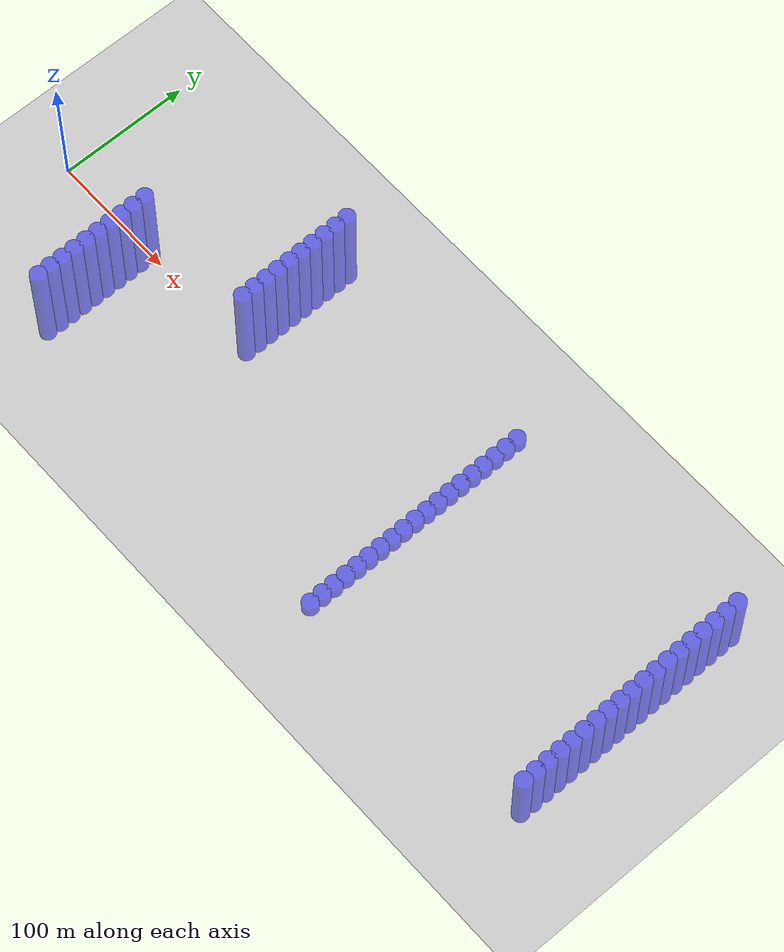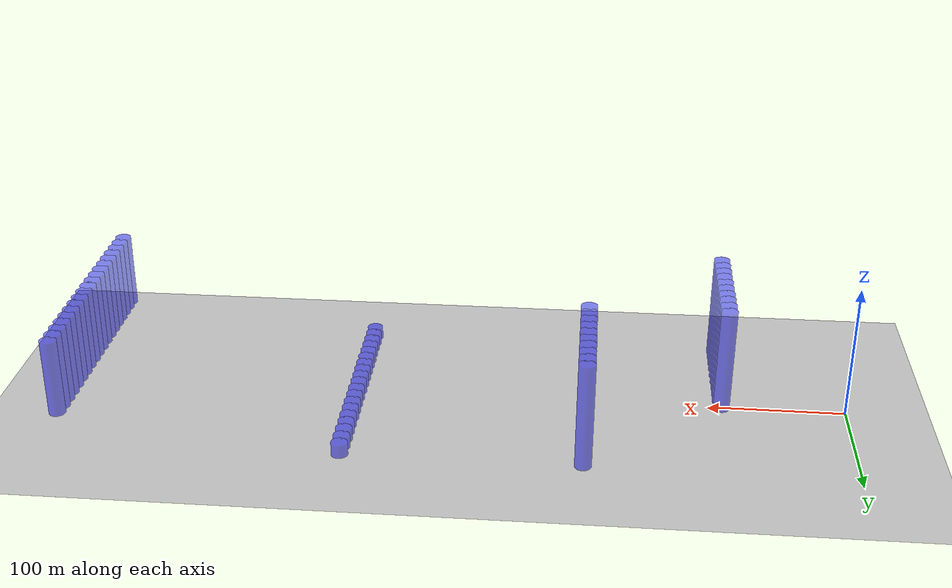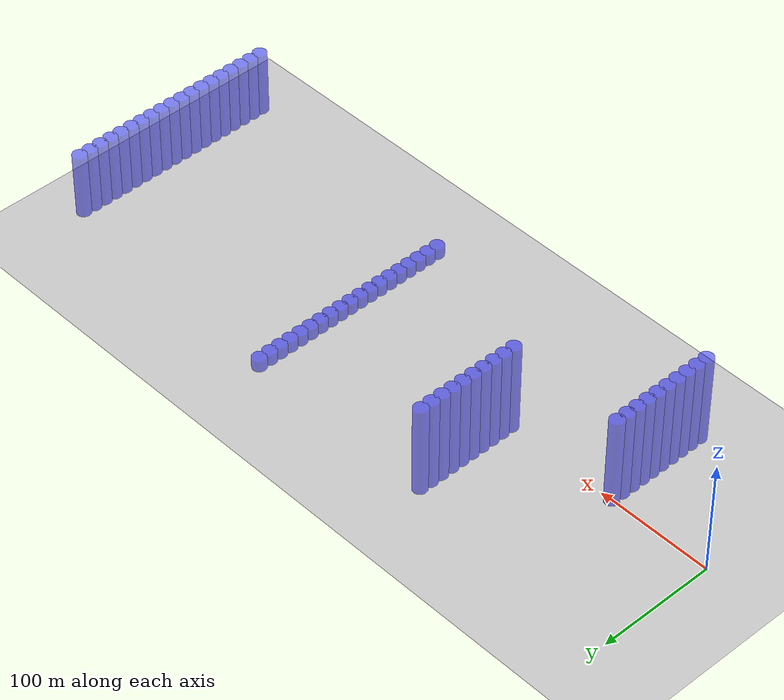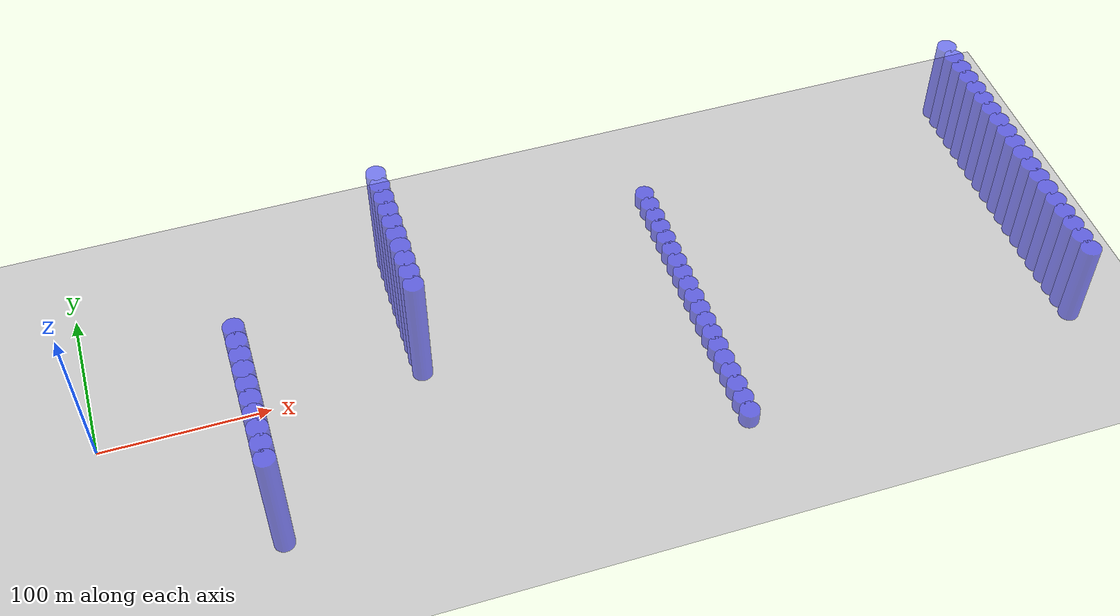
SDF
<?xml version='1.0' encoding='utf-8'?>
<sdf version="1.6">
  <world name="default">
    <physics name="default_physics" default="0" type="ode">
      <ode>
        <solver>
          <type>quick</type>
          <iters>50</iters>
          <sor>0.8</sor>
          <use_dynamic_moi_rescaling>0</use_dynamic_moi_rescaling>
        </solver>
        <constraints>
          <cfm>0</cfm>
          <erp>0.2</erp>
          <contact_max_correcting_vel>0.1</contact_max_correcting_vel>
          <contact_surface_layer>0</contact_surface_layer>
        </constraints>
      </ode>
      <real_time_update_rate>100</real_time_update_rate>
      <max_step_size>0.01</max_step_size>
      <real_time_factor>1</real_time_factor>
    </physics>
    <light name="sun" type="directional">
      <cast_shadows>1</cast_shadows>
      <pose frame="">0 0 10 0 -0 0</pose>
      <diffuse>0.8 0.8 0.8 1</diffuse>
      <specular>0.2 0.2 0.2 1</specular>
      <attenuation>
        <range>1000</range>
        <constant>0.9</constant>
        <linear>0.01</linear>
        <quadratic>0.001</quadratic>
      </attenuation>
      <direction>-0.5 0.1 -0.9</direction>
    </light>
    <model name="ground_plane">
      <static>1</static>
      <link name="link">
        <collision name="collision">
          <geometry>
            <plane>
              <normal>0 0 1</normal>
              <size>2200.0 600.0</size>
            </plane>
          </geometry>
          <surface>
            <friction>
              <ode>
                <mu>100</mu>
                <mu2>50</mu2>
              </ode>
              <torsional>
                <ode />
              </torsional>
            </friction>
            <contact>
              <ode />
            </contact>
            <bounce />
          </surface>
          <max_contacts>10</max_contacts>
        </collision>
        <visual name="visual">
          <cast_shadows>0</cast_shadows>
          <geometry>
            <plane>
              <normal>0 0 1</normal>
              <size>2200.0 600.0</size>
            </plane>
          </geometry>
          <material>
            <script>
              <uri>file://media/materials/scripts/gazebo.material</uri>
              <name>Gazebo/Grey</name>
            </script>
          </material>
        </visual>
        <self_collide>0</self_collide>
        <enable_wind>0</enable_wind>
        <kinematic>0</kinematic>
      </link>
    </model>
    <gravity>0 0 0</gravity>
    <magnetic_field>6e-06 2.3e-05 -4.2e-05</magnetic_field>
    <atmosphere type="adiabatic" />
    <scene>
      <ambient>0.4 0.4 0.4 1</ambient>
      <background>0.7 0.7 0.7 1</background>
      <shadows>1</shadows>
    </scene>
    <wind />
    <spherical_coordinates>
      <surface_model>EARTH_WGS84</surface_model>
      <latitude_deg>0</latitude_deg>
      <longitude_deg>0</longitude_deg>
      <elevation>0</elevation>
      <heading_deg>0</heading_deg>
    </spherical_coordinates>
    <model name="suav1">
      <link name="base_link">
        <pose frame="">0 0 0 0 -0 0</pose>
        <inertial>
          <pose frame="">0 0 0 0 -0 0</pose>
          <mass>0.1</mass>
          <inertia>
            <ixx>1</ixx>
            <ixy>0</ixy>
            <ixz>0</ixz>
            <iyy>1</iyy>
            <iyz>0</iyz>
            <izz>1</izz>
          </inertia>
        </inertial>
        <collision name="base_link_fixed_joint_lump__body_link_collision">
          <pose frame="">0 0 0 0 -0 0</pose>
          <geometry>
            <mesh>
              <scale>0.1 0.1 0.1</scale>
              <uri>package://simple_airplane_description/meshes/simple_airplane.dae</uri>
            </mesh>
          </geometry>
          <surface>
            <contact>
              <ode />
            </contact>
            <friction>
              <ode />
              <torsional>
                <ode />
              </torsional>
            </friction>
            <bounce />
          </surface>
          <max_contacts>10</max_contacts>
        </collision>
        <visual name="base_link_fixed_joint_lump__base_visual_visual">
          <pose frame="">0 0 0 0 -0 0</pose>
          <geometry>
            <mesh>
              <scale>0.1 0.1 0.1</scale>
              <uri>package://simple_airplane_description/meshes/simple_airplane.dae</uri>
            </mesh>
          </geometry>
        </visual>
        <velocity_decay />
        <gravity>0</gravity>
        <gravity>1</gravity>
        <velocity_decay />
        <gravity>0</gravity>
        <self_collide>0</self_collide>
        <enable_wind>0</enable_wind>
        <kinematic>0</kinematic>
        <visual name="front_camera_housing">
          <pose>0 0 0.015 0 -0 0</pose>
          <geometry>
            <box>
              <size>0.04 0.05 0.04</size>
            </box>
          </geometry>
        </visual>
        <visual name="front_camera_lens">
          <pose>0.025 0 0.015 0 1.5708 0</pose>
          <geometry>
            <cylinder>
              <length>0.01</length>
              <radius>0.012</radius>
            </cylinder>
          </geometry>
        </visual>
        <sensor name="front_camera" type="camera">
          <pose>0.03 0 0.015 0 0 0</pose>
          <always_on>true</always_on>
          <update_rate>15</update_rate>
          <visualize>false</visualize>
          <camera name="front_camera">
            <horizontal_fov>1.5707963267948966</horizontal_fov>
            <image>
              <width>640</width>
              <height>360</height>
              <format>R8G8B8</format>
            </image>
            <clip>
              <near>0.05</near>
              <far>300</far>
            </clip>
          </camera>
          <plugin filename="libgazebo_ros_camera.so" name="front_camera_controller">
            <robotNamespace>/suav1</robotNamespace>
            <cameraName>front_camera</cameraName>
            <imageTopicName>image_raw</imageTopicName>
            <cameraInfoTopicName>camera_info</cameraInfoTopicName>
            <frameName>front_camera_optical_frame</frameName>
            <updateRate>15.0</updateRate>
          </plugin>
        </sensor>
      </link>
      <static>0</static>
      <plugin name="object_controller" filename="libgazebo_ros_planar_move_with_banking_and_pitching_plugin1.so">
        <commandTopic>cmd_vel</commandTopic>
        <odometryTopic>odom</odometryTopic>
        <odometryFrame>odom</odometryFrame>
        <odometryRate>80.0</odometryRate>
        <robotBaseFrame>base_link</robotBaseFrame>
        <robotNamespace>/suav1/</robotNamespace>
      </plugin>
      <pose frame="">0.0 0.0 8.0 0.0 0.0 0.0</pose>
    </model>
    <gui fullscreen="0">
      <camera name="user_camera">
        <pose frame="">470.0 -900.0 500.0 0.0 0.5 1.5707963268</pose>
        <view_controller>orbit</view_controller>
        <projection_type>perspective</projection_type>
      </camera>
    </gui>
    <model name="static_obs1">
      <static>true</static>
      <pose>90.0 -90.0 40.0 0 0 0</pose>
      <link name="link">
        <gravity>false</gravity>
        <collision name="collision">
          <geometry>
            <cylinder>
              <radius>6.0</radius>
              <length>80.0</length>
            </cylinder>
          </geometry>
        </collision>
        <visual name="visual">
          <geometry>
            <cylinder>
              <radius>6.0</radius>
              <length>80.0</length>
            </cylinder>
          </geometry>
          <material>
            <ambient>0 0 1 1</ambient>
            <diffuse>0 0 1 1</diffuse>
          </material>
          <transparency>0.5</transparency>
        </visual>
      </link>
    </model>
    <model name="static_obs2">
      <static>true</static>
      <pose>90.0 -80.0 40.0 0 0 0</pose>
      <link name="link">
        <gravity>false</gravity>
        <collision name="collision">
          <geometry>
            <cylinder>
              <radius>6.0</radius>
              <length>80.0</length>
            </cylinder>
          </geometry>
        </collision>
        <visual name="visual">
          <geometry>
            <cylinder>
              <radius>6.0</radius>
              <length>80.0</length>
            </cylinder>
          </geometry>
          <material>
            <ambient>0 0 1 1</ambient>
            <diffuse>0 0 1 1</diffuse>
          </material>
          <transparency>0.5</transparency>
        </visual>
      </link>
    </model>
    <model name="static_obs3">
      <static>true</static>
      <pose>90.0 -70.0 40.0 0 0 0</pose>
      <link name="link">
        <gravity>false</gravity>
        <collision name="collision">
          <geometry>
            <cylinder>
              <radius>6.0</radius>
              <length>80.0</length>
            </cylinder>
          </geometry>
        </collision>
        <visual name="visual">
          <geometry>
            <cylinder>
              <radius>6.0</radius>
              <length>80.0</length>
            </cylinder>
          </geometry>
          <material>
            <ambient>0 0 1 1</ambient>
            <diffuse>0 0 1 1</diffuse>
          </material>
          <transparency>0.5</transparency>
        </visual>
      </link>
    </model>
    <model name="static_obs4">
      <static>true</static>
      <pose>90.0 -60.0 40.0 0 0 0</pose>
      <link name="link">
        <gravity>false</gravity>
        <collision name="collision">
          <geometry>
            <cylinder>
              <radius>6.0</radius>
              <length>80.0</length>
            </cylinder>
          </geometry>
        </collision>
        <visual name="visual">
          <geometry>
            <cylinder>
              <radius>6.0</radius>
              <length>80.0</length>
            </cylinder>
          </geometry>
          <material>
            <ambient>0 0 1 1</ambient>
            <diffuse>0 0 1 1</diffuse>
          </material>
          <transparency>0.5</transparency>
        </visual>
      </link>
    </model>
    <model name="static_obs5">
      <static>true</static>
      <pose>90.0 -50.0 40.0 0 0 0</pose>
      <link name="link">
        <gravity>false</gravity>
        <collision name="collision">
          <geometry>
            <cylinder>
              <radius>6.0</radius>
              <length>80.0</length>
            </cylinder>
          </geometry>
        </collision>
        <visual name="visual">
          <geometry>
            <cylinder>
              <radius>6.0</radius>
              <length>80.0</length>
            </cylinder>
          </geometry>
          <material>
            <ambient>0 0 1 1</ambient>
            <diffuse>0 0 1 1</diffuse>
          </material>
          <transparency>0.5</transparency>
        </visual>
      </link>
    </model>
    <model name="static_obs6">
      <static>true</static>
      <pose>90.0 -40.0 40.0 0 0 0</pose>
      <link name="link">
        <gravity>false</gravity>
        <collision name="collision">
          <geometry>
            <cylinder>
              <radius>6.0</radius>
              <length>80.0</length>
            </cylinder>
          </geometry>
        </collision>
        <visual name="visual">
          <geometry>
            <cylinder>
              <radius>6.0</radius>
              <length>80.0</length>
            </cylinder>
          </geometry>
          <material>
            <ambient>0 0 1 1</ambient>
            <diffuse>0 0 1 1</diffuse>
          </material>
          <transparency>0.5</transparency>
        </visual>
      </link>
    </model>
    <model name="static_obs7">
      <static>true</static>
      <pose>90.0 -30.0 40.0 0 0 0</pose>
      <link name="link">
        <gravity>false</gravity>
        <collision name="collision">
          <geometry>
            <cylinder>
              <radius>6.0</radius>
              <length>80.0</length>
            </cylinder>
          </geometry>
        </collision>
        <visual name="visual">
          <geometry>
            <cylinder>
              <radius>6.0</radius>
              <length>80.0</length>
            </cylinder>
          </geometry>
          <material>
            <ambient>0 0 1 1</ambient>
            <diffuse>0 0 1 1</diffuse>
          </material>
          <transparency>0.5</transparency>
        </visual>
      </link>
    </model>
    <model name="static_obs8">
      <static>true</static>
      <pose>90.0 -20.0 40.0 0 0 0</pose>
      <link name="link">
        <gravity>false</gravity>
        <collision name="collision">
          <geometry>
            <cylinder>
              <radius>6.0</radius>
              <length>80.0</length>
            </cylinder>
          </geometry>
        </collision>
        <visual name="visual">
          <geometry>
            <cylinder>
              <radius>6.0</radius>
              <length>80.0</length>
            </cylinder>
          </geometry>
          <material>
            <ambient>0 0 1 1</ambient>
            <diffuse>0 0 1 1</diffuse>
          </material>
          <transparency>0.5</transparency>
        </visual>
      </link>
    </model>
    <model name="static_obs9">
      <static>true</static>
      <pose>90.0 -10.0 40.0 0 0 0</pose>
      <link name="link">
        <gravity>false</gravity>
        <collision name="collision">
          <geometry>
            <cylinder>
              <radius>6.0</radius>
              <length>80.0</length>
            </cylinder>
          </geometry>
        </collision>
        <visual name="visual">
          <geometry>
            <cylinder>
              <radius>6.0</radius>
              <length>80.0</length>
            </cylinder>
          </geometry>
          <material>
            <ambient>0 0 1 1</ambient>
            <diffuse>0 0 1 1</diffuse>
          </material>
          <transparency>0.5</transparency>
        </visual>
      </link>
    </model>
    <model name="static_obs10">
      <static>true</static>
      <pose>90.0 0.0 40.0 0 0 0</pose>
      <link name="link">
        <gravity>false</gravity>
        <collision name="collision">
          <geometry>
            <cylinder>
              <radius>6.0</radius>
              <length>80.0</length>
            </cylinder>
          </geometry>
        </collision>
        <visual name="visual">
          <geometry>
            <cylinder>
              <radius>6.0</radius>
              <length>80.0</length>
            </cylinder>
          </geometry>
          <material>
            <ambient>0 0 1 1</ambient>
            <diffuse>0 0 1 1</diffuse>
          </material>
          <transparency>0.5</transparency>
        </visual>
      </link>
    </model>
    <model name="static_obs11">
      <static>true</static>
      <pose>190.0 0.0 40.0 0 0 0</pose>
      <link name="link">
        <gravity>false</gravity>
        <collision name="collision">
          <geometry>
            <cylinder>
              <radius>6.0</radius>
              <length>80.0</length>
            </cylinder>
          </geometry>
        </collision>
        <visual name="visual">
          <geometry>
            <cylinder>
              <radius>6.0</radius>
              <length>80.0</length>
            </cylinder>
          </geometry>
          <material>
            <ambient>0 0 1 1</ambient>
            <diffuse>0 0 1 1</diffuse>
          </material>
          <transparency>0.5</transparency>
        </visual>
      </link>
    </model>
    <model name="static_obs12">
      <static>true</static>
      <pose>190.0 10.0 40.0 0 0 0</pose>
      <link name="link">
        <gravity>false</gravity>
        <collision name="collision">
          <geometry>
            <cylinder>
              <radius>6.0</radius>
              <length>80.0</length>
            </cylinder>
          </geometry>
        </collision>
        <visual name="visual">
          <geometry>
            <cylinder>
              <radius>6.0</radius>
              <length>80.0</length>
            </cylinder>
          </geometry>
          <material>
            <ambient>0 0 1 1</ambient>
            <diffuse>0 0 1 1</diffuse>
          </material>
          <transparency>0.5</transparency>
        </visual>
      </link>
    </model>
    <model name="static_obs13">
      <static>true</static>
      <pose>190.0 20.0 40.0 0 0 0</pose>
      <link name="link">
        <gravity>false</gravity>
        <collision name="collision">
          <geometry>
            <cylinder>
              <radius>6.0</radius>
              <length>80.0</length>
            </cylinder>
          </geometry>
        </collision>
        <visual name="visual">
          <geometry>
            <cylinder>
              <radius>6.0</radius>
              <length>80.0</length>
            </cylinder>
          </geometry>
          <material>
            <ambient>0 0 1 1</ambient>
            <diffuse>0 0 1 1</diffuse>
          </material>
          <transparency>0.5</transparency>
        </visual>
      </link>
    </model>
    <model name="static_obs14">
      <static>true</static>
      <pose>190.0 30.0 40.0 0 0 0</pose>
      <link name="link">
        <gravity>false</gravity>
        <collision name="collision">
          <geometry>
            <cylinder>
              <radius>6.0</radius>
              <length>80.0</length>
            </cylinder>
          </geometry>
        </collision>
        <visual name="visual">
          <geometry>
            <cylinder>
              <radius>6.0</radius>
              <length>80.0</length>
            </cylinder>
          </geometry>
          <material>
            <ambient>0 0 1 1</ambient>
            <diffuse>0 0 1 1</diffuse>
          </material>
          <transparency>0.5</transparency>
        </visual>
      </link>
    </model>
    <model name="static_obs15">
      <static>true</static>
      <pose>190.0 40.0 40.0 0 0 0</pose>
      <link name="link">
        <gravity>false</gravity>
        <collision name="collision">
          <geometry>
            <cylinder>
              <radius>6.0</radius>
              <length>80.0</length>
            </cylinder>
          </geometry>
        </collision>
        <visual name="visual">
          <geometry>
            <cylinder>
              <radius>6.0</radius>
              <length>80.0</length>
            </cylinder>
          </geometry>
          <material>
            <ambient>0 0 1 1</ambient>
            <diffuse>0 0 1 1</diffuse>
          </material>
          <transparency>0.5</transparency>
        </visual>
      </link>
    </model>
    <model name="static_obs16">
      <static>true</static>
      <pose>190.0 50.0 40.0 0 0 0</pose>
      <link name="link">
        <gravity>false</gravity>
        <collision name="collision">
          <geometry>
            <cylinder>
              <radius>6.0</radius>
              <length>80.0</length>
            </cylinder>
          </geometry>
        </collision>
        <visual name="visual">
          <geometry>
            <cylinder>
              <radius>6.0</radius>
              <length>80.0</length>
            </cylinder>
          </geometry>
          <material>
            <ambient>0 0 1 1</ambient>
            <diffuse>0 0 1 1</diffuse>
          </material>
          <transparency>0.5</transparency>
        </visual>
      </link>
    </model>
    <model name="static_obs17">
      <static>true</static>
      <pose>190.0 60.0 40.0 0 0 0</pose>
      <link name="link">
        <gravity>false</gravity>
        <collision name="collision">
          <geometry>
            <cylinder>
              <radius>6.0</radius>
              <length>80.0</length>
            </cylinder>
          </geometry>
        </collision>
        <visual name="visual">
          <geometry>
            <cylinder>
              <radius>6.0</radius>
              <length>80.0</length>
            </cylinder>
          </geometry>
          <material>
            <ambient>0 0 1 1</ambient>
            <diffuse>0 0 1 1</diffuse>
          </material>
          <transparency>0.5</transparency>
        </visual>
      </link>
    </model>
    <model name="static_obs18">
      <static>true</static>
      <pose>190.0 70.0 40.0 0 0 0</pose>
      <link name="link">
        <gravity>false</gravity>
        <collision name="collision">
          <geometry>
            <cylinder>
              <radius>6.0</radius>
              <length>80.0</length>
            </cylinder>
          </geometry>
        </collision>
        <visual name="visual">
          <geometry>
            <cylinder>
              <radius>6.0</radius>
              <length>80.0</length>
            </cylinder>
          </geometry>
          <material>
            <ambient>0 0 1 1</ambient>
            <diffuse>0 0 1 1</diffuse>
          </material>
          <transparency>0.5</transparency>
        </visual>
      </link>
    </model>
    <model name="static_obs19">
      <static>true</static>
      <pose>190.0 80.0 40.0 0 0 0</pose>
      <link name="link">
        <gravity>false</gravity>
        <collision name="collision">
          <geometry>
            <cylinder>
              <radius>6.0</radius>
              <length>80.0</length>
            </cylinder>
          </geometry>
        </collision>
        <visual name="visual">
          <geometry>
            <cylinder>
              <radius>6.0</radius>
              <length>80.0</length>
            </cylinder>
          </geometry>
          <material>
            <ambient>0 0 1 1</ambient>
            <diffuse>0 0 1 1</diffuse>
          </material>
          <transparency>0.5</transparency>
        </visual>
      </link>
    </model>
    <model name="static_obs20">
      <static>true</static>
      <pose>190.0 90.0 40.0 0 0 0</pose>
      <link name="link">
        <gravity>false</gravity>
        <collision name="collision">
          <geometry>
            <cylinder>
              <radius>6.0</radius>
              <length>80.0</length>
            </cylinder>
          </geometry>
        </collision>
        <visual name="visual">
          <geometry>
            <cylinder>
              <radius>6.0</radius>
              <length>80.0</length>
            </cylinder>
          </geometry>
          <material>
            <ambient>0 0 1 1</ambient>
            <diffuse>0 0 1 1</diffuse>
          </material>
          <transparency>0.5</transparency>
        </visual>
      </link>
    </model>
    <model name="static_obs21">
      <static>true</static>
      <pose>360.0 -90.0 5.0 0 0 0</pose>
      <link name="link">
        <gravity>false</gravity>
        <collision name="collision">
          <geometry>
            <cylinder>
              <radius>6.0</radius>
              <length>10.0</length>
            </cylinder>
          </geometry>
        </collision>
        <visual name="visual">
          <geometry>
            <cylinder>
              <radius>6.0</radius>
              <length>10.0</length>
            </cylinder>
          </geometry>
          <material>
            <ambient>0 0 1 1</ambient>
            <diffuse>0 0 1 1</diffuse>
          </material>
          <transparency>0.5</transparency>
        </visual>
      </link>
    </model>
    <model name="static_obs22">
      <static>true</static>
      <pose>360.0 -80.0 5.0 0 0 0</pose>
      <link name="link">
        <gravity>false</gravity>
        <collision name="collision">
          <geometry>
            <cylinder>
              <radius>6.0</radius>
              <length>10.0</length>
            </cylinder>
          </geometry>
        </collision>
        <visual name="visual">
          <geometry>
            <cylinder>
              <radius>6.0</radius>
              <length>10.0</length>
            </cylinder>
          </geometry>
          <material>
            <ambient>0 0 1 1</ambient>
            <diffuse>0 0 1 1</diffuse>
          </material>
          <transparency>0.5</transparency>
        </visual>
      </link>
    </model>
    <model name="static_obs23">
      <static>true</static>
      <pose>360.0 -70.0 5.0 0 0 0</pose>
      <link name="link">
        <gravity>false</gravity>
        <collision name="collision">
          <geometry>
            <cylinder>
              <radius>6.0</radius>
              <length>10.0</length>
            </cylinder>
          </geometry>
        </collision>
        <visual name="visual">
          <geometry>
            <cylinder>
              <radius>6.0</radius>
              <length>10.0</length>
            </cylinder>
          </geometry>
          <material>
            <ambient>0 0 1 1</ambient>
            <diffuse>0 0 1 1</diffuse>
          </material>
          <transparency>0.5</transparency>
        </visual>
      </link>
    </model>
    <model name="static_obs24">
      <static>true</static>
      <pose>360.0 -60.0 5.0 0 0 0</pose>
      <link name="link">
        <gravity>false</gravity>
        <collision name="collision">
          <geometry>
            <cylinder>
              <radius>6.0</radius>
              <length>10.0</length>
            </cylinder>
          </geometry>
        </collision>
        <visual name="visual">
          <geometry>
            <cylinder>
              <radius>6.0</radius>
              <length>10.0</length>
            </cylinder>
          </geometry>
          <material>
            <ambient>0 0 1 1</ambient>
            <diffuse>0 0 1 1</diffuse>
          </material>
          <transparency>0.5</transparency>
        </visual>
      </link>
    </model>
    <model name="static_obs25">
      <static>true</static>
      <pose>360.0 -50.0 5.0 0 0 0</pose>
      <link name="link">
        <gravity>false</gravity>
        <collision name="collision">
          <geometry>
            <cylinder>
              <radius>6.0</radius>
              <length>10.0</length>
            </cylinder>
          </geometry>
        </collision>
        <visual name="visual">
          <geometry>
            <cylinder>
              <radius>6.0</radius>
              <length>10.0</length>
            </cylinder>
          </geometry>
          <material>
            <ambient>0 0 1 1</ambient>
            <diffuse>0 0 1 1</diffuse>
          </material>
          <transparency>0.5</transparency>
        </visual>
      </link>
    </model>
    <model name="static_obs26">
      <static>true</static>
      <pose>360.0 -40.0 5.0 0 0 0</pose>
      <link name="link">
        <gravity>false</gravity>
        <collision name="collision">
          <geometry>
            <cylinder>
              <radius>6.0</radius>
              <length>10.0</length>
            </cylinder>
          </geometry>
        </collision>
        <visual name="visual">
          <geometry>
            <cylinder>
              <radius>6.0</radius>
              <length>10.0</length>
            </cylinder>
          </geometry>
          <material>
            <ambient>0 0 1 1</ambient>
            <diffuse>0 0 1 1</diffuse>
          </material>
          <transparency>0.5</transparency>
        </visual>
      </link>
    </model>
    <model name="static_obs27">
      <static>true</static>
      <pose>360.0 -30.0 5.0 0 0 0</pose>
      <link name="link">
        <gravity>false</gravity>
        <collision name="collision">
          <geometry>
            <cylinder>
              <radius>6.0</radius>
              <length>10.0</length>
            </cylinder>
          </geometry>
        </collision>
        <visual name="visual">
          <geometry>
            <cylinder>
              <radius>6.0</radius>
              <length>10.0</length>
            </cylinder>
          </geometry>
          <material>
            <ambient>0 0 1 1</ambient>
            <diffuse>0 0 1 1</diffuse>
          </material>
          <transparency>0.5</transparency>
        </visual>
      </link>
    </model>
    <model name="static_obs28">
      <static>true</static>
      <pose>360.0 -20.0 5.0 0 0 0</pose>
      <link name="link">
        <gravity>false</gravity>
        <collision name="collision">
          <geometry>
            <cylinder>
              <radius>6.0</radius>
              <length>10.0</length>
            </cylinder>
          </geometry>
        </collision>
        <visual name="visual">
          <geometry>
            <cylinder>
              <radius>6.0</radius>
              <length>10.0</length>
            </cylinder>
          </geometry>
          <material>
            <ambient>0 0 1 1</ambient>
            <diffuse>0 0 1 1</diffuse>
          </material>
          <transparency>0.5</transparency>
        </visual>
      </link>
    </model>
    <model name="static_obs29">
      <static>true</static>
      <pose>360.0 -10.0 5.0 0 0 0</pose>
      <link name="link">
        <gravity>false</gravity>
        <collision name="collision">
          <geometry>
            <cylinder>
              <radius>6.0</radius>
              <length>10.0</length>
            </cylinder>
          </geometry>
        </collision>
        <visual name="visual">
          <geometry>
            <cylinder>
              <radius>6.0</radius>
              <length>10.0</length>
            </cylinder>
          </geometry>
          <material>
            <ambient>0 0 1 1</ambient>
            <diffuse>0 0 1 1</diffuse>
          </material>
          <transparency>0.5</transparency>
        </visual>
      </link>
    </model>
    <model name="static_obs30">
      <static>true</static>
      <pose>360.0 0.0 5.0 0 0 0</pose>
      <link name="link">
        <gravity>false</gravity>
        <collision name="collision">
          <geometry>
            <cylinder>
              <radius>6.0</radius>
              <length>10.0</length>
            </cylinder>
          </geometry>
        </collision>
        <visual name="visual">
          <geometry>
            <cylinder>
              <radius>6.0</radius>
              <length>10.0</length>
            </cylinder>
          </geometry>
          <material>
            <ambient>0 0 1 1</ambient>
            <diffuse>0 0 1 1</diffuse>
          </material>
          <transparency>0.5</transparency>
        </visual>
      </link>
    </model>
    <model name="static_obs31">
      <static>true</static>
      <pose>360.0 10.0 5.0 0 0 0</pose>
      <link name="link">
        <gravity>false</gravity>
        <collision name="collision">
          <geometry>
            <cylinder>
              <radius>6.0</radius>
              <length>10.0</length>
            </cylinder>
          </geometry>
        </collision>
        <visual name="visual">
          <geometry>
            <cylinder>
              <radius>6.0</radius>
              <length>10.0</length>
            </cylinder>
          </geometry>
          <material>
            <ambient>0 0 1 1</ambient>
            <diffuse>0 0 1 1</diffuse>
          </material>
          <transparency>0.5</transparency>
        </visual>
      </link>
    </model>
    <model name="static_obs32">
      <static>true</static>
      <pose>360.0 20.0 5.0 0 0 0</pose>
      <link name="link">
        <gravity>false</gravity>
        <collision name="collision">
          <geometry>
            <cylinder>
              <radius>6.0</radius>
              <length>10.0</length>
            </cylinder>
          </geometry>
        </collision>
        <visual name="visual">
          <geometry>
            <cylinder>
              <radius>6.0</radius>
              <length>10.0</length>
            </cylinder>
          </geometry>
          <material>
            <ambient>0 0 1 1</ambient>
            <diffuse>0 0 1 1</diffuse>
          </material>
          <transparency>0.5</transparency>
        </visual>
      </link>
    </model>
    <model name="static_obs33">
      <static>true</static>
      <pose>360.0 30.0 5.0 0 0 0</pose>
      <link name="link">
        <gravity>false</gravity>
        <collision name="collision">
          <geometry>
            <cylinder>
              <radius>6.0</radius>
              <length>10.0</length>
            </cylinder>
          </geometry>
        </collision>
        <visual name="visual">
          <geometry>
            <cylinder>
              <radius>6.0</radius>
              <length>10.0</length>
            </cylinder>
          </geometry>
          <material>
            <ambient>0 0 1 1</ambient>
            <diffuse>0 0 1 1</diffuse>
          </material>
          <transparency>0.5</transparency>
        </visual>
      </link>
    </model>
    <model name="static_obs34">
      <static>true</static>
      <pose>360.0 40.0 5.0 0 0 0</pose>
      <link name="link">
        <gravity>false</gravity>
        <collision name="collision">
          <geometry>
            <cylinder>
              <radius>6.0</radius>
              <length>10.0</length>
            </cylinder>
          </geometry>
        </collision>
        <visual name="visual">
          <geometry>
            <cylinder>
              <radius>6.0</radius>
              <length>10.0</length>
            </cylinder>
          </geometry>
          <material>
            <ambient>0 0 1 1</ambient>
            <diffuse>0 0 1 1</diffuse>
          </material>
          <transparency>0.5</transparency>
        </visual>
      </link>
    </model>
    <model name="static_obs35">
      <static>true</static>
      <pose>360.0 50.0 5.0 0 0 0</pose>
      <link name="link">
        <gravity>false</gravity>
        <collision name="collision">
          <geometry>
            <cylinder>
              <radius>6.0</radius>
              <length>10.0</length>
            </cylinder>
          </geometry>
        </collision>
        <visual name="visual">
          <geometry>
            <cylinder>
              <radius>6.0</radius>
              <length>10.0</length>
            </cylinder>
          </geometry>
          <material>
            <ambient>0 0 1 1</ambient>
            <diffuse>0 0 1 1</diffuse>
          </material>
          <transparency>0.5</transparency>
        </visual>
      </link>
    </model>
    <model name="static_obs36">
      <static>true</static>
      <pose>360.0 60.0 5.0 0 0 0</pose>
      <link name="link">
        <gravity>false</gravity>
        <collision name="collision">
          <geometry>
            <cylinder>
              <radius>6.0</radius>
              <length>10.0</length>
            </cylinder>
          </geometry>
        </collision>
        <visual name="visual">
          <geometry>
            <cylinder>
              <radius>6.0</radius>
              <length>10.0</length>
            </cylinder>
          </geometry>
          <material>
            <ambient>0 0 1 1</ambient>
            <diffuse>0 0 1 1</diffuse>
          </material>
          <transparency>0.5</transparency>
        </visual>
      </link>
    </model>
    <model name="static_obs37">
      <static>true</static>
      <pose>360.0 70.0 5.0 0 0 0</pose>
      <link name="link">
        <gravity>false</gravity>
        <collision name="collision">
          <geometry>
            <cylinder>
              <radius>6.0</radius>
              <length>10.0</length>
            </cylinder>
          </geometry>
        </collision>
        <visual name="visual">
          <geometry>
            <cylinder>
              <radius>6.0</radius>
              <length>10.0</length>
            </cylinder>
          </geometry>
          <material>
            <ambient>0 0 1 1</ambient>
            <diffuse>0 0 1 1</diffuse>
          </material>
          <transparency>0.5</transparency>
        </visual>
      </link>
    </model>
    <model name="static_obs38">
      <static>true</static>
      <pose>360.0 80.0 5.0 0 0 0</pose>
      <link name="link">
        <gravity>false</gravity>
        <collision name="collision">
          <geometry>
            <cylinder>
              <radius>6.0</radius>
              <length>10.0</length>
            </cylinder>
          </geometry>
        </collision>
        <visual name="visual">
          <geometry>
            <cylinder>
              <radius>6.0</radius>
              <length>10.0</length>
            </cylinder>
          </geometry>
          <material>
            <ambient>0 0 1 1</ambient>
            <diffuse>0 0 1 1</diffuse>
          </material>
          <transparency>0.5</transparency>
        </visual>
      </link>
    </model>
    <model name="static_obs39">
      <static>true</static>
      <pose>360.0 90.0 5.0 0 0 0</pose>
      <link name="link">
        <gravity>false</gravity>
        <collision name="collision">
          <geometry>
            <cylinder>
              <radius>6.0</radius>
              <length>10.0</length>
            </cylinder>
          </geometry>
        </collision>
        <visual name="visual">
          <geometry>
            <cylinder>
              <radius>6.0</radius>
              <length>10.0</length>
            </cylinder>
          </geometry>
          <material>
            <ambient>0 0 1 1</ambient>
            <diffuse>0 0 1 1</diffuse>
          </material>
          <transparency>0.5</transparency>
        </visual>
      </link>
    </model>
    <model name="static_obs40">
      <static>true</static>
      <pose>560.0 -90.0 51.5 0 0 0</pose>
      <link name="link">
        <gravity>false</gravity>
        <collision name="collision">
          <geometry>
            <cylinder>
              <radius>6.0</radius>
              <length>57.0</length>
            </cylinder>
          </geometry>
        </collision>
        <visual name="visual">
          <geometry>
            <cylinder>
              <radius>6.0</radius>
              <length>57.0</length>
            </cylinder>
          </geometry>
          <material>
            <ambient>0 0 1 1</ambient>
            <diffuse>0 0 1 1</diffuse>
          </material>
          <transparency>0.5</transparency>
        </visual>
      </link>
    </model>
    <model name="static_obs41">
      <static>true</static>
      <pose>560.0 -80.0 51.5 0 0 0</pose>
      <link name="link">
        <gravity>false</gravity>
        <collision name="collision">
          <geometry>
            <cylinder>
              <radius>6.0</radius>
              <length>57.0</length>
            </cylinder>
          </geometry>
        </collision>
        <visual name="visual">
          <geometry>
            <cylinder>
              <radius>6.0</radius>
              <length>57.0</length>
            </cylinder>
          </geometry>
          <material>
            <ambient>0 0 1 1</ambient>
            <diffuse>0 0 1 1</diffuse>
          </material>
          <transparency>0.5</transparency>
        </visual>
      </link>
    </model>
    <model name="static_obs42">
      <static>true</static>
      <pose>560.0 -70.0 51.5 0 0 0</pose>
      <link name="link">
        <gravity>false</gravity>
        <collision name="collision">
          <geometry>
            <cylinder>
              <radius>6.0</radius>
              <length>57.0</length>
            </cylinder>
          </geometry>
        </collision>
        <visual name="visual">
          <geometry>
            <cylinder>
              <radius>6.0</radius>
              <length>57.0</length>
            </cylinder>
          </geometry>
          <material>
            <ambient>0 0 1 1</ambient>
            <diffuse>0 0 1 1</diffuse>
          </material>
          <transparency>0.5</transparency>
        </visual>
      </link>
    </model>
    <model name="static_obs43">
      <static>true</static>
      <pose>560.0 -60.0 51.5 0 0 0</pose>
      <link name="link">
        <gravity>false</gravity>
        <collision name="collision">
          <geometry>
            <cylinder>
              <radius>6.0</radius>
              <length>57.0</length>
            </cylinder>
          </geometry>
        </collision>
        <visual name="visual">
          <geometry>
            <cylinder>
              <radius>6.0</radius>
              <length>57.0</length>
            </cylinder>
          </geometry>
          <material>
            <ambient>0 0 1 1</ambient>
            <diffuse>0 0 1 1</diffuse>
          </material>
          <transparency>0.5</transparency>
        </visual>
      </link>
    </model>
    <model name="static_obs44">
      <static>true</static>
      <pose>560.0 -50.0 51.5 0 0 0</pose>
      <link name="link">
        <gravity>false</gravity>
        <collision name="collision">
          <geometry>
            <cylinder>
              <radius>6.0</radius>
              <length>57.0</length>
            </cylinder>
          </geometry>
        </collision>
        <visual name="visual">
          <geometry>
            <cylinder>
              <radius>6.0</radius>
              <length>57.0</length>
            </cylinder>
          </geometry>
          <material>
            <ambient>0 0 1 1</ambient>
            <diffuse>0 0 1 1</diffuse>
          </material>
          <transparency>0.5</transparency>
        </visual>
      </link>
    </model>
    <model name="static_obs45">
      <static>true</static>
      <pose>560.0 -40.0 51.5 0 0 0</pose>
      <link name="link">
        <gravity>false</gravity>
        <collision name="collision">
          <geometry>
            <cylinder>
              <radius>6.0</radius>
              <length>57.0</length>
            </cylinder>
          </geometry>
        </collision>
        <visual name="visual">
          <geometry>
            <cylinder>
              <radius>6.0</radius>
              <length>57.0</length>
            </cylinder>
          </geometry>
          <material>
            <ambient>0 0 1 1</ambient>
            <diffuse>0 0 1 1</diffuse>
          </material>
          <transparency>0.5</transparency>
        </visual>
      </link>
    </model>
    <model name="static_obs46">
      <static>true</static>
      <pose>560.0 -30.0 51.5 0 0 0</pose>
      <link name="link">
        <gravity>false</gravity>
        <collision name="collision">
          <geometry>
            <cylinder>
              <radius>6.0</radius>
              <length>57.0</length>
            </cylinder>
          </geometry>
        </collision>
        <visual name="visual">
          <geometry>
            <cylinder>
              <radius>6.0</radius>
              <length>57.0</length>
            </cylinder>
          </geometry>
          <material>
            <ambient>0 0 1 1</ambient>
            <diffuse>0 0 1 1</diffuse>
          </material>
          <transparency>0.5</transparency>
        </visual>
      </link>
    </model>
    <model name="static_obs47">
      <static>true</static>
      <pose>560.0 -20.0 51.5 0 0 0</pose>
      <link name="link">
        <gravity>false</gravity>
        <collision name="collision">
          <geometry>
            <cylinder>
              <radius>6.0</radius>
              <length>57.0</length>
            </cylinder>
          </geometry>
        </collision>
        <visual name="visual">
          <geometry>
            <cylinder>
              <radius>6.0</radius>
              <length>57.0</length>
            </cylinder>
          </geometry>
          <material>
            <ambient>0 0 1 1</ambient>
            <diffuse>0 0 1 1</diffuse>
          </material>
          <transparency>0.5</transparency>
        </visual>
      </link>
    </model>
    <model name="static_obs48">
      <static>true</static>
      <pose>560.0 -10.0 51.5 0 0 0</pose>
      <link name="link">
        <gravity>false</gravity>
        <collision name="collision">
          <geometry>
            <cylinder>
              <radius>6.0</radius>
              <length>57.0</length>
            </cylinder>
          </geometry>
        </collision>
        <visual name="visual">
          <geometry>
            <cylinder>
              <radius>6.0</radius>
              <length>57.0</length>
            </cylinder>
          </geometry>
          <material>
            <ambient>0 0 1 1</ambient>
            <diffuse>0 0 1 1</diffuse>
          </material>
          <transparency>0.5</transparency>
        </visual>
      </link>
    </model>
    <model name="static_obs49">
      <static>true</static>
      <pose>560.0 0.0 51.5 0 0 0</pose>
      <link name="link">
        <gravity>false</gravity>
        <collision name="collision">
          <geometry>
            <cylinder>
              <radius>6.0</radius>
              <length>57.0</length>
            </cylinder>
          </geometry>
        </collision>
        <visual name="visual">
          <geometry>
            <cylinder>
              <radius>6.0</radius>
              <length>57.0</length>
            </cylinder>
          </geometry>
          <material>
            <ambient>0 0 1 1</ambient>
            <diffuse>0 0 1 1</diffuse>
          </material>
          <transparency>0.5</transparency>
        </visual>
      </link>
    </model>
    <model name="static_obs50">
      <static>true</static>
      <pose>560.0 10.0 51.5 0 0 0</pose>
      <link name="link">
        <gravity>false</gravity>
        <collision name="collision">
          <geometry>
            <cylinder>
              <radius>6.0</radius>
              <length>57.0</length>
            </cylinder>
          </geometry>
        </collision>
        <visual name="visual">
          <geometry>
            <cylinder>
              <radius>6.0</radius>
              <length>57.0</length>
            </cylinder>
          </geometry>
          <material>
            <ambient>0 0 1 1</ambient>
            <diffuse>0 0 1 1</diffuse>
          </material>
          <transparency>0.5</transparency>
        </visual>
      </link>
    </model>
    <model name="static_obs51">
      <static>true</static>
      <pose>560.0 20.0 51.5 0 0 0</pose>
      <link name="link">
        <gravity>false</gravity>
        <collision name="collision">
          <geometry>
            <cylinder>
              <radius>6.0</radius>
              <length>57.0</length>
            </cylinder>
          </geometry>
        </collision>
        <visual name="visual">
          <geometry>
            <cylinder>
              <radius>6.0</radius>
              <length>57.0</length>
            </cylinder>
          </geometry>
          <material>
            <ambient>0 0 1 1</ambient>
            <diffuse>0 0 1 1</diffuse>
          </material>
          <transparency>0.5</transparency>
        </visual>
      </link>
    </model>
    <model name="static_obs52">
      <static>true</static>
      <pose>560.0 30.0 51.5 0 0 0</pose>
      <link name="link">
        <gravity>false</gravity>
        <collision name="collision">
          <geometry>
            <cylinder>
              <radius>6.0</radius>
              <length>57.0</length>
            </cylinder>
          </geometry>
        </collision>
        <visual name="visual">
          <geometry>
            <cylinder>
              <radius>6.0</radius>
              <length>57.0</length>
            </cylinder>
          </geometry>
          <material>
            <ambient>0 0 1 1</ambient>
            <diffuse>0 0 1 1</diffuse>
          </material>
          <transparency>0.5</transparency>
        </visual>
      </link>
    </model>
    <model name="static_obs53">
      <static>true</static>
      <pose>560.0 40.0 51.5 0 0 0</pose>
      <link name="link">
        <gravity>false</gravity>
        <collision name="collision">
          <geometry>
            <cylinder>
              <radius>6.0</radius>
              <length>57.0</length>
            </cylinder>
          </geometry>
        </collision>
        <visual name="visual">
          <geometry>
            <cylinder>
              <radius>6.0</radius>
              <length>57.0</length>
            </cylinder>
          </geometry>
          <material>
            <ambient>0 0 1 1</ambient>
            <diffuse>0 0 1 1</diffuse>
          </material>
          <transparency>0.5</transparency>
        </visual>
      </link>
    </model>
    <model name="static_obs54">
      <static>true</static>
      <pose>560.0 50.0 51.5 0 0 0</pose>
      <link name="link">
        <gravity>false</gravity>
        <collision name="collision">
          <geometry>
            <cylinder>
              <radius>6.0</radius>
              <length>57.0</length>
            </cylinder>
          </geometry>
        </collision>
        <visual name="visual">
          <geometry>
            <cylinder>
              <radius>6.0</radius>
              <length>57.0</length>
            </cylinder>
          </geometry>
          <material>
            <ambient>0 0 1 1</ambient>
            <diffuse>0 0 1 1</diffuse>
          </material>
          <transparency>0.5</transparency>
        </visual>
      </link>
    </model>
    <model name="static_obs55">
      <static>true</static>
      <pose>560.0 60.0 51.5 0 0 0</pose>
      <link name="link">
        <gravity>false</gravity>
        <collision name="collision">
          <geometry>
            <cylinder>
              <radius>6.0</radius>
              <length>57.0</length>
            </cylinder>
          </geometry>
        </collision>
        <visual name="visual">
          <geometry>
            <cylinder>
              <radius>6.0</radius>
              <length>57.0</length>
            </cylinder>
          </geometry>
          <material>
            <ambient>0 0 1 1</ambient>
            <diffuse>0 0 1 1</diffuse>
          </material>
          <transparency>0.5</transparency>
        </visual>
      </link>
    </model>
    <model name="static_obs56">
      <static>true</static>
      <pose>560.0 70.0 51.5 0 0 0</pose>
      <link name="link">
        <gravity>false</gravity>
        <collision name="collision">
          <geometry>
            <cylinder>
              <radius>6.0</radius>
              <length>57.0</length>
            </cylinder>
          </geometry>
        </collision>
        <visual name="visual">
          <geometry>
            <cylinder>
              <radius>6.0</radius>
              <length>57.0</length>
            </cylinder>
          </geometry>
          <material>
            <ambient>0 0 1 1</ambient>
            <diffuse>0 0 1 1</diffuse>
          </material>
          <transparency>0.5</transparency>
        </visual>
      </link>
    </model>
    <model name="static_obs57">
      <static>true</static>
      <pose>560.0 80.0 51.5 0 0 0</pose>
      <link name="link">
        <gravity>false</gravity>
        <collision name="collision">
          <geometry>
            <cylinder>
              <radius>6.0</radius>
              <length>57.0</length>
            </cylinder>
          </geometry>
        </collision>
        <visual name="visual">
          <geometry>
            <cylinder>
              <radius>6.0</radius>
              <length>57.0</length>
            </cylinder>
          </geometry>
          <material>
            <ambient>0 0 1 1</ambient>
            <diffuse>0 0 1 1</diffuse>
          </material>
          <transparency>0.5</transparency>
        </visual>
      </link>
    </model>
    <model name="static_obs58">
      <static>true</static>
      <pose>560.0 90.0 51.5 0 0 0</pose>
      <link name="link">
        <gravity>false</gravity>
        <collision name="collision">
          <geometry>
            <cylinder>
              <radius>6.0</radius>
              <length>57.0</length>
            </cylinder>
          </geometry>
        </collision>
        <visual name="visual">
          <geometry>
            <cylinder>
              <radius>6.0</radius>
              <length>57.0</length>
            </cylinder>
          </geometry>
          <material>
            <ambient>0 0 1 1</ambient>
            <diffuse>0 0 1 1</diffuse>
          </material>
          <transparency>0.5</transparency>
        </visual>
      </link>
    </model>
  </world>
</sdf>
